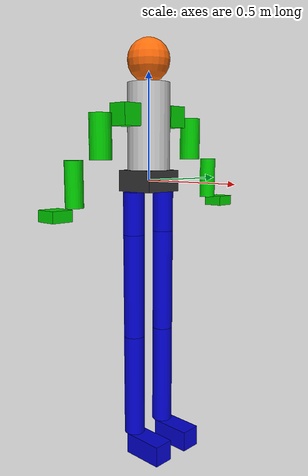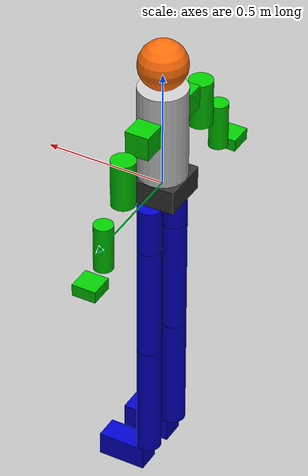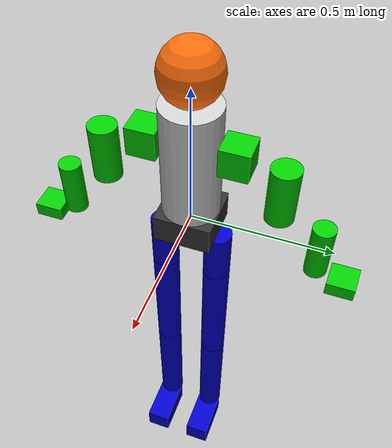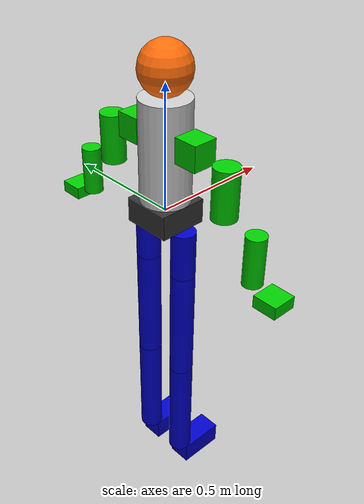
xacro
<?xml version="1.0"?>
<robot xmlns:xacro="http://www.ros.org/wiki/xacro" name="g1">

  <!-- G1 Humanoid Robot - Simplified Model -->
  <xacro:property name="M_PI" value="3.1415926535897931" />

  <!-- Materials -->
  <material name="black">
    <color rgba="0.0 0.0 0.0 1.0"/>
  </material>

  <material name="blue">
    <color rgba="0.0 0.0 0.8 1.0"/>
  </material>

  <material name="green">
    <color rgba="0.0 0.8 0.0 1.0"/>
  </material>

  <material name="grey">
    <color rgba="0.2 0.2 0.2 1.0"/>
  </material>

  <material name="silver">
    <color rgba="0.8 0.8 0.8 1.0"/>
  </material>

  <material name="orange">
    <color rgba="1.0 0.423529411765 0.0392156862745 1.0"/>
  </material>

  <material name="brown">
    <color rgba="0.870588235294 0.811764705882 0.764705882353 1.0"/>
  </material>

  <material name="red">
    <color rgba="0.8 0.0 0.0 1.0"/>
  </material>

  <material name="white">
    <color rgba="1.0 1.0 1.0 1.0"/>
  </material>

  <!-- Links -->
  <link name="world"/>

  <joint name="floating_base" type="floating">
    <parent link="world"/>
    <child link="pelvis"/>
  </joint>

  <link name="pelvis">
    <visual>
      <origin xyz="0 0 0" rpy="0 0 0"/>
      <geometry>
        <box size="0.2 0.2 0.1"/>
      </geometry>
      <material name="grey"/>
    </visual>
    <collision>
      <origin xyz="0 0 0" rpy="0 0 0"/>
      <geometry>
        <box size="0.2 0.2 0.1"/>
      </geometry>
    </collision>
    <inertial>
      <origin xyz="0 0 0" rpy="0 0 0"/>
      <mass value="5.0"/>
      <inertia ixx="0.1" ixy="0.0" ixz="0.0" iyy="0.1" iyz="0.0" izz="0.1"/>
    </inertial>
  </link>

  <!-- Left Leg -->
  <joint name="left_hip_yaw" type="revolute">
    <parent link="pelvis"/>
    <child link="left_hip"/>
    <origin xyz="0 -0.1 -0.05" rpy="0 0 0"/>
    <axis xyz="0 0 1"/>
    <limit lower="${-M_PI/2}" upper="${M_PI/2}" effort="100" velocity="3.14"/>
  </joint>

  <link name="left_hip">
    <visual>
      <origin xyz="0 0 -0.1" rpy="0 0 0"/>
      <geometry>
        <cylinder radius="0.05" length="0.2"/>
      </geometry>
      <material name="blue"/>
    </visual>
    <collision>
      <origin xyz="0 0 -0.1" rpy="0 0 0"/>
      <geometry>
        <cylinder radius="0.05" length="0.2"/>
      </geometry>
    </collision>
    <inertial>
      <origin xyz="0 0 -0.1" rpy="0 0 0"/>
      <mass value="2.0"/>
      <inertia ixx="0.01" ixy="0.0" ixz="0.0" iyy="0.01" iyz="0.0" izz="0.01"/>
    </inertial>
  </link>

  <joint name="left_hip_roll" type="revolute">
    <parent link="left_hip"/>
    <child link="left_thigh"/>
    <origin xyz="0 0 -0.2" rpy="0 0 0"/>
    <axis xyz="0 1 0"/>
    <limit lower="${-M_PI/2}" upper="${M_PI/2}" effort="100" velocity="3.14"/>
  </joint>

  <link name="left_thigh">
    <visual>
      <origin xyz="0 0 -0.25" rpy="0 0 0"/>
      <geometry>
        <cylinder radius="0.05" length="0.5"/>
      </geometry>
      <material name="blue"/>
    </visual>
    <collision>
      <origin xyz="0 0 -0.25" rpy="0 0 0"/>
      <geometry>
        <cylinder radius="0.05" length="0.5"/>
      </geometry>
    </collision>
    <inertial>
      <origin xyz="0 0 -0.25" rpy="0 0 0"/>
      <mass value="3.0"/>
      <inertia ixx="0.02" ixy="0.0" ixz="0.0" iyy="0.02" iyz="0.0" izz="0.02"/>
    </inertial>
  </link>

  <joint name="left_knee" type="revolute">
    <parent link="left_thigh"/>
    <child link="left_shin"/>
    <origin xyz="0 0 -0.5" rpy="0 0 0"/>
    <axis xyz="0 1 0"/>
    <limit lower="${-M_PI/2}" upper="${M_PI/2}" effort="100" velocity="3.14"/>
  </joint>

  <link name="left_shin">
    <visual>
      <origin xyz="0 0 -0.25" rpy="0 0 0"/>
      <geometry>
        <cylinder radius="0.05" length="0.5"/>
      </geometry>
      <material name="blue"/>
    </visual>
    <collision>
      <origin xyz="0 0 -0.25" rpy="0 0 0"/>
      <geometry>
        <cylinder radius="0.05" length="0.5"/>
      </geometry>
    </collision>
    <inertial>
      <origin xyz="0 0 -0.25" rpy="0 0 0"/>
      <mass value="2.5"/>
      <inertia ixx="0.015" ixy="0.0" ixz="0.0" iyy="0.015" iyz="0.0" izz="0.015"/>
    </inertial>
  </link>

  <joint name="left_ankle" type="revolute">
    <parent link="left_shin"/>
    <child link="left_foot"/>
    <origin xyz="0 0 -0.5" rpy="0 0 0"/>
    <axis xyz="0 0 1"/>
    <limit lower="${-M_PI/3}" upper="${M_PI/3}" effort="50" velocity="3.14"/>
  </joint>

  <link name="left_foot">
    <visual>
      <origin xyz="0.1 0 -0.05" rpy="0 0 0"/>
      <geometry>
        <box size="0.2 0.1 0.1"/>
      </geometry>
      <material name="blue"/>
    </visual>
    <collision>
      <origin xyz="0.1 0 -0.05" rpy="0 0 0"/>
      <geometry>
        <box size="0.2 0.1 0.1"/>
      </geometry>
    </collision>
    <inertial>
      <origin xyz="0.1 0 -0.05" rpy="0 0 0"/>
      <mass value="1.0"/>
      <inertia ixx="0.01" ixy="0.0" ixz="0.0" iyy="0.01" iyz="0.0" izz="0.01"/>
    </inertial>
  </link>

  <!-- Right Leg -->
  <joint name="right_hip_yaw" type="revolute">
    <parent link="pelvis"/>
    <child link="right_hip"/>
    <origin xyz="0 0.1 -0.05" rpy="0 0 0"/>
    <axis xyz="0 0 1"/>
    <limit lower="${-M_PI/2}" upper="${M_PI/2}" effort="100" velocity="3.14"/>
  </joint>

  <link name="right_hip">
    <visual>
      <origin xyz="0 0 -0.1" rpy="0 0 0"/>
      <geometry>
        <cylinder radius="0.05" length="0.2"/>
      </geometry>
      <material name="blue"/>
    </visual>
    <collision>
      <origin xyz="0 0 -0.1" rpy="0 0 0"/>
      <geometry>
        <cylinder radius="0.05" length="0.2"/>
      </geometry>
    </collision>
    <inertial>
      <origin xyz="0 0 -0.1" rpy="0 0 0"/>
      <mass value="2.0"/>
      <inertia ixx="0.01" ixy="0.0" ixz="0.0" iyy="0.01" iyz="0.0" izz="0.01"/>
    </inertial>
  </link>

  <joint name="right_hip_roll" type="revolute">
    <parent link="right_hip"/>
    <child link="right_thigh"/>
    <origin xyz="0 0 -0.2" rpy="0 0 0"/>
    <axis xyz="0 1 0"/>
    <limit lower="${-M_PI/2}" upper="${M_PI/2}" effort="100" velocity="3.14"/>
  </joint>

  <link name="right_thigh">
    <visual>
      <origin xyz="0 0 -0.25" rpy="0 0 0"/>
      <geometry>
        <cylinder radius="0.05" length="0.5"/>
      </geometry>
      <material name="blue"/>
    </visual>
    <collision>
      <origin xyz="0 0 -0.25" rpy="0 0 0"/>
      <geometry>
        <cylinder radius="0.05" length="0.5"/>
      </geometry>
    </collision>
    <inertial>
      <origin xyz="0 0 -0.25" rpy="0 0 0"/>
      <mass value="3.0"/>
      <inertia ixx="0.02" ixy="0.0" ixz="0.0" iyy="0.02" iyz="0.0" izz="0.02"/>
    </inertial>
  </link>

  <joint name="right_knee" type="revolute">
    <parent link="right_thigh"/>
    <child link="right_shin"/>
    <origin xyz="0 0 -0.5" rpy="0 0 0"/>
    <axis xyz="0 1 0"/>
    <limit lower="${-M_PI/2}" upper="${M_PI/2}" effort="100" velocity="3.14"/>
  </joint>

  <link name="right_shin">
    <visual>
      <origin xyz="0 0 -0.25" rpy="0 0 0"/>
      <geometry>
        <cylinder radius="0.05" length="0.5"/>
      </geometry>
      <material name="blue"/>
    </visual>
    <collision>
      <origin xyz="0 0 -0.25" rpy="0 0 0"/>
      <geometry>
        <cylinder radius="0.05" length="0.5"/>
      </geometry>
    </collision>
    <inertial>
      <origin xyz="0 0 -0.25" rpy="0 0 0"/>
      <mass value="2.5"/>
      <inertia ixx="0.015" ixy="0.0" ixz="0.0" iyy="0.015" iyz="0.0" izz="0.015"/>
    </inertial>
  </link>

  <joint name="right_ankle" type="revolute">
    <parent link="right_shin"/>
    <child link="right_foot"/>
    <origin xyz="0 0 -0.5" rpy="0 0 0"/>
    <axis xyz="0 0 1"/>
    <limit lower="${-M_PI/3}" upper="${M_PI/3}" effort="50" velocity="3.14"/>
  </joint>

  <link name="right_foot">
    <visual>
      <origin xyz="0.1 0 -0.05" rpy="0 0 0"/>
      <geometry>
        <box size="0.2 0.1 0.1"/>
      </geometry>
      <material name="blue"/>
    </visual>
    <collision>
      <origin xyz="0.1 0 -0.05" rpy="0 0 0"/>
      <geometry>
        <box size="0.2 0.1 0.1"/>
      </geometry>
    </collision>
    <inertial>
      <origin xyz="0.1 0 -0.05" rpy="0 0 0"/>
      <mass value="1.0"/>
      <inertia ixx="0.01" ixy="0.0" ixz="0.0" iyy="0.01" iyz="0.0" izz="0.01"/>
    </inertial>
  </link>

  <!-- Torso -->
  <joint name="waist_yaw" type="revolute">
    <parent link="pelvis"/>
    <child link="torso"/>
    <origin xyz="0 0 0.05" rpy="0 0 0"/>
    <axis xyz="0 0 1"/>
    <limit lower="${-M_PI/3}" upper="${M_PI/3}" effort="100" velocity="3.14"/>
  </joint>

  <link name="torso">
    <visual>
      <origin xyz="0 0 0.2" rpy="0 0 0"/>
      <geometry>
        <cylinder radius="0.1" length="0.4"/>
      </geometry>
      <material name="silver"/>
    </visual>
    <collision>
      <origin xyz="0 0 0.2" rpy="0 0 0"/>
      <geometry>
        <cylinder radius="0.1" length="0.4"/>
      </geometry>
    </collision>
    <inertial>
      <origin xyz="0 0 0.2" rpy="0 0 0"/>
      <mass value="8.0"/>
      <inertia ixx="0.2" ixy="0.0" ixz="0.0" iyy="0.2" iyz="0.0" izz="0.2"/>
    </inertial>
  </link>

  <!-- Head -->
  <joint name="neck_yaw" type="revolute">
    <parent link="torso"/>
    <child link="head"/>
    <origin xyz="0 0 0.4" rpy="0 0 0"/>
    <axis xyz="0 0 1"/>
    <limit lower="${-M_PI/3}" upper="${M_PI/3}" effort="20" velocity="3.14"/>
  </joint>

  <link name="head">
    <visual>
      <origin xyz="0 0 0.1" rpy="0 0 0"/>
      <geometry>
        <sphere radius="0.1"/>
      </geometry>
      <material name="orange"/>
    </visual>
    <collision>
      <origin xyz="0 0 0.1" rpy="0 0 0"/>
      <geometry>
        <sphere radius="0.1"/>
      </geometry>
    </collision>
    <inertial>
      <origin xyz="0 0 0.1" rpy="0 0 0"/>
      <mass value="2.0"/>
      <inertia ixx="0.01" ixy="0.0" ixz="0.0" iyy="0.01" iyz="0.0" izz="0.01"/>
    </inertial>
  </link>

  <!-- Left Arm -->
  <joint name="left_shoulder_yaw" type="revolute">
    <parent link="torso"/>
    <child link="left_shoulder"/>
    <origin xyz="0 -0.1 0.3" rpy="0 0 0"/>
    <axis xyz="0 0 1"/>
    <limit lower="${-M_PI/3}" upper="${M_PI/3}" effort="50" velocity="3.14"/>
  </joint>

  <link name="left_shoulder">
    <visual>
      <origin xyz="0 -0.05 -0.05" rpy="0 0 0"/>
      <geometry>
        <box size="0.1 0.1 0.1"/>
      </geometry>
      <material name="green"/>
    </visual>
    <collision>
      <origin xyz="0 -0.05 -0.05" rpy="0 0 0"/>
      <geometry>
        <box size="0.1 0.1 0.1"/>
      </geometry>
    </collision>
    <inertial>
      <origin xyz="0 -0.05 -0.05" rpy="0 0 0"/>
      <mass value="1.0"/>
      <inertia ixx="0.01" ixy="0.0" ixz="0.0" iyy="0.01" iyz="0.0" izz="0.01"/>
    </inertial>
  </link>

  <joint name="left_shoulder_roll" type="revolute">
    <parent link="left_shoulder"/>
    <child link="left_upper_arm"/>
    <origin xyz="0 -0.1 -0.05" rpy="0 0 0"/>
    <axis xyz="1 0 0"/>
    <limit lower="${-M_PI/2}" upper="${M_PI/2}" effort="50" velocity="3.14"/>
  </joint>

  <link name="left_upper_arm">
    <visual>
      <origin xyz="0 -0.1 -0.1" rpy="0 0 0"/>
      <geometry>
        <cylinder radius="0.05" length="0.2"/>
      </geometry>
      <material name="green"/>
    </visual>
    <collision>
      <origin xyz="0 -0.1 -0.1" rpy="0 0 0"/>
      <geometry>
        <cylinder radius="0.05" length="0.2"/>
      </geometry>
    </collision>
    <inertial>
      <origin xyz="0 -0.1 -0.1" rpy="0 0 0"/>
      <mass value="1.0"/>
      <inertia ixx="0.01" ixy="0.0" ixz="0.0" iyy="0.01" iyz="0.0" izz="0.01"/>
    </inertial>
  </link>

  <joint name="left_elbow" type="revolute">
    <parent link="left_upper_arm"/>
    <child link="left_forearm"/>
    <origin xyz="0 -0.2 -0.2" rpy="0 0 0"/>
    <axis xyz="0 1 0"/>
    <limit lower="${-M_PI/2}" upper="${M_PI/2}" effort="50" velocity="3.14"/>
  </joint>

  <link name="left_forearm">
    <visual>
      <origin xyz="0 -0.05 -0.1" rpy="0 0 0"/>
      <geometry>
        <cylinder radius="0.04" length="0.2"/>
      </geometry>
      <material name="green"/>
    </visual>
    <collision>
      <origin xyz="0 -0.05 -0.1" rpy="0 0 0"/>
      <geometry>
        <cylinder radius="0.04" length="0.2"/>
      </geometry>
    </collision>
    <inertial>
      <origin xyz="0 -0.05 -0.1" rpy="0 0 0"/>
      <mass value="0.5"/>
      <inertia ixx="0.005" ixy="0.0" ixz="0.0" iyy="0.005" iyz="0.0" izz="0.005"/>
    </inertial>
  </link>

  <joint name="left_wrist_yaw" type="revolute">
    <parent link="left_forearm"/>
    <child link="left_hand"/>
    <origin xyz="0 -0.1 -0.2" rpy="0 0 0"/>
    <axis xyz="0 0 1"/>
    <limit lower="${-M_PI/3}" upper="${M_PI/3}" effort="20" velocity="3.14"/>
  </joint>

  <link name="left_hand">
    <visual>
      <origin xyz="0 -0.05 -0.025" rpy="0 0 0"/>
      <geometry>
        <box size="0.1 0.1 0.05"/>
      </geometry>
      <material name="green"/>
    </visual>
    <collision>
      <origin xyz="0 -0.05 -0.025" rpy="0 0 0"/>
      <geometry>
        <box size="0.1 0.1 0.05"/>
      </geometry>
    </collision>
    <inertial>
      <origin xyz="0 -0.05 -0.025" rpy="0 0 0"/>
      <mass value="0.3"/>
      <inertia ixx="0.001" ixy="0.0" ixz="0.0" iyy="0.001" iyz="0.0" izz="0.001"/>
    </inertial>
  </link>

  <!-- Right Arm -->
  <joint name="right_shoulder_yaw" type="revolute">
    <parent link="torso"/>
    <child link="right_shoulder"/>
    <origin xyz="0 0.1 0.3" rpy="0 0 0"/>
    <axis xyz="0 0 1"/>
    <limit lower="${-M_PI/3}" upper="${M_PI/3}" effort="50" velocity="3.14"/>
  </joint>

  <link name="right_shoulder">
    <visual>
      <origin xyz="0 0.05 -0.05" rpy="0 0 0"/>
      <geometry>
        <box size="0.1 0.1 0.1"/>
      </geometry>
      <material name="green"/>
    </visual>
    <collision>
      <origin xyz="0 0.05 -0.05" rpy="0 0 0"/>
      <geometry>
        <box size="0.1 0.1 0.1"/>
      </geometry>
    </collision>
    <inertial>
      <origin xyz="0 0.05 -0.05" rpy="0 0 0"/>
      <mass value="1.0"/>
      <inertia ixx="0.01" ixy="0.0" ixz="0.0" iyy="0.01" iyz="0.0" izz="0.01"/>
    </inertial>
  </link>

  <joint name="right_shoulder_roll" type="revolute">
    <parent link="right_shoulder"/>
    <child link="right_upper_arm"/>
    <origin xyz="0 0.1 -0.05" rpy="0 0 0"/>
    <axis xyz="1 0 0"/>
    <limit lower="${-M_PI/2}" upper="${M_PI/2}" effort="50" velocity="3.14"/>
  </joint>

  <link name="right_upper_arm">
    <visual>
      <origin xyz="0 0.1 -0.1" rpy="0 0 0"/>
      <geometry>
        <cylinder radius="0.05" length="0.2"/>
      </geometry>
      <material name="green"/>
    </visual>
    <collision>
      <origin xyz="0 0.1 -0.1" rpy="0 0 0"/>
      <geometry>
        <cylinder radius="0.05" length="0.2"/>
      </geometry>
    </collision>
    <inertial>
      <origin xyz="0 0.1 -0.1" rpy="0 0 0"/>
      <mass value="1.0"/>
      <inertia ixx="0.01" ixy="0.0" ixz="0.0" iyy="0.01" iyz="0.0" izz="0.01"/>
    </inertial>
  </link>

  <joint name="right_elbow" type="revolute">
    <parent link="right_upper_arm"/>
    <child link="right_forearm"/>
    <origin xyz="0 0.2 -0.2" rpy="0 0 0"/>
    <axis xyz="0 1 0"/>
    <limit lower="${-M_PI/2}" upper="${M_PI/2}" effort="50" velocity="3.14"/>
  </joint>

  <link name="right_forearm">
    <visual>
      <origin xyz="0 0.05 -0.1" rpy="0 0 0"/>
      <geometry>
        <cylinder radius="0.04" length="0.2"/>
      </geometry>
      <material name="green"/>
    </visual>
    <collision>
      <origin xyz="0 0.05 -0.1" rpy="0 0 0"/>
      <geometry>
        <cylinder radius="0.04" length="0.2"/>
      </geometry>
    </collision>
    <inertial>
      <origin xyz="0 0.05 -0.1" rpy="0 0 0"/>
      <mass value="0.5"/>
      <inertia ixx="0.005" ixy="0.0" ixz="0.0" iyy="0.005" iyz="0.0" izz="0.005"/>
    </inertial>
  </link>

  <joint name="right_wrist_yaw" type="revolute">
    <parent link="right_forearm"/>
    <child link="right_hand"/>
    <origin xyz="0 0.1 -0.2" rpy="0 0 0"/>
    <axis xyz="0 0 1"/>
    <limit lower="${-M_PI/3}" upper="${M_PI/3}" effort="20" velocity="3.14"/>
  </joint>

  <link name="right_hand">
    <visual>
      <origin xyz="0 0.05 -0.025" rpy="0 0 0"/>
      <geometry>
        <box size="0.1 0.1 0.05"/>
      </geometry>
      <material name="green"/>
    </visual>
    <collision>
      <origin xyz="0 0.05 -0.025" rpy="0 0 0"/>
      <geometry>
        <box size="0.1 0.1 0.05"/>
      </geometry>
    </collision>
    <inertial>
      <origin xyz="0 0.05 -0.025" rpy="0 0 0"/>
      <mass value="0.3"/>
      <inertia ixx="0.001" ixy="0.0" ixz="0.0" iyy="0.001" iyz="0.0" izz="0.001"/>
    </inertial>
  </link>

</robot>
